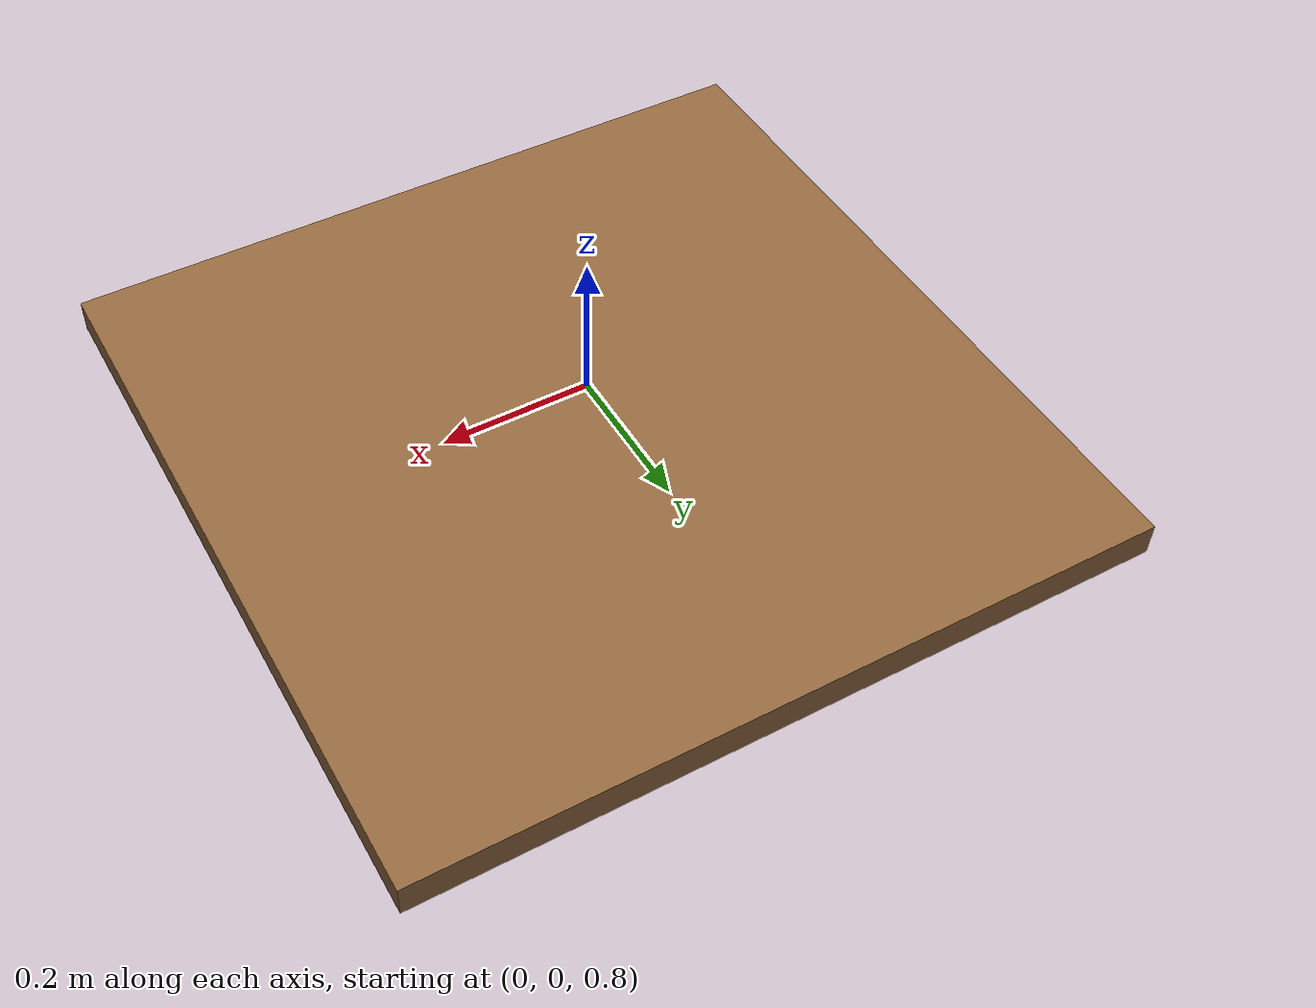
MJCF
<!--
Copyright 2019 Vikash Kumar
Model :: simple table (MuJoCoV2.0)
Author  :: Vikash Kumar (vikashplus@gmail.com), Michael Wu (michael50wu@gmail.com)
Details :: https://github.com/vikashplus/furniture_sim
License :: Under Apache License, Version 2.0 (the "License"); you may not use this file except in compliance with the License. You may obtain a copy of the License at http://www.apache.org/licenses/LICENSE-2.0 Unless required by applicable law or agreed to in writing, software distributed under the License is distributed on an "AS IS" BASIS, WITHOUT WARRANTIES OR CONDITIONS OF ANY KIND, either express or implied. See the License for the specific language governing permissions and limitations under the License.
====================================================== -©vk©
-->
<mujoco model="simpleTable">

    <compiler angle="radian" meshdir="" texturedir=""/>
    <include file="simpleTable/simpleTable_asset.xml"/>
    <visual>
        <headlight diffuse=".9 .9 .9"/>
    </visual>

    <worldbody>

        <body pos="0 0 0">
            <include file="simpleTable/simpleWoodTable_body.xml" />
        </body>
    </worldbody>

</mujoco>

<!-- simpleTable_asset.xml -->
<mujocoinclude>

    <asset>
        <texture name="T_simpleWoodTable" type="cube" height="1" width="1" file="common/textures/wood1.png" />
        <material name="M_simpleWoodTable" texture="T_simpleWoodTable" rgba="0.8 0.8 0.8 1" shininess="0.2" reflectance="0.3" texuniform="false" />
    </asset>

    <default>

        <default class="viz_simpleWoodTable" >
            <geom group="1" contype="0" conaffinity="0" type="mesh" material="M_simpleWoodTable"/>
        </default>

        <default class="body_simpleTable" >
            <geom contype="1" conaffinity="1" group="4" rgba=".4 .5 .6 1" />
            <joint limited="true" damping="1" frictionloss="0.5" armature=".01" />
        </default>

   </default>

</mujocoinclude>

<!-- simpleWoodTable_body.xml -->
<mujocoinclude>

    <!-- simpleWoodTable -©vk©-->
    <body name="simpleWoodTable" pos="0 0 0"  childclass="body_simpleTable" >
        <geom class="viz_simpleWoodTable" type="box" size="0.5 0.5 .023" pos="0 0 0.735"/>

        <geom type="box" size="0.5 0.5 .025" pos="0 0 0.735" mass="40" />
    </body>
</mujocoinclude>
